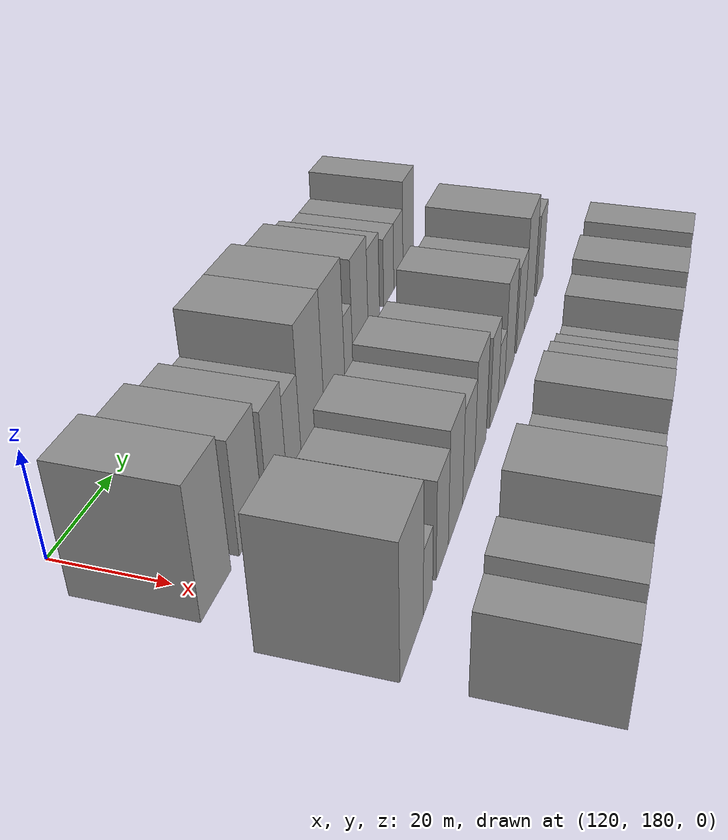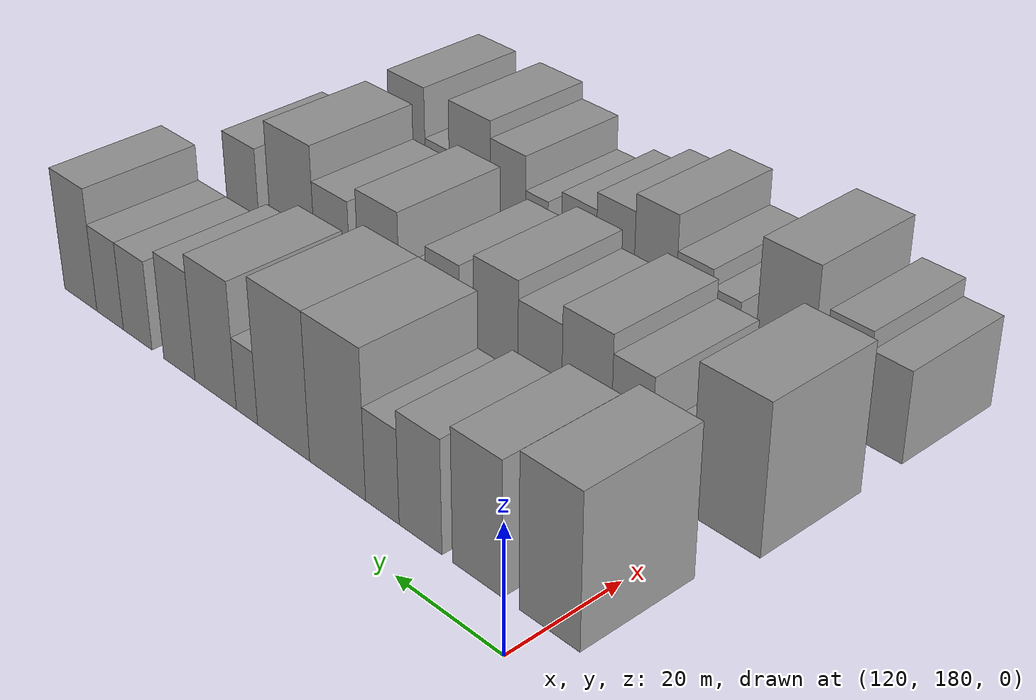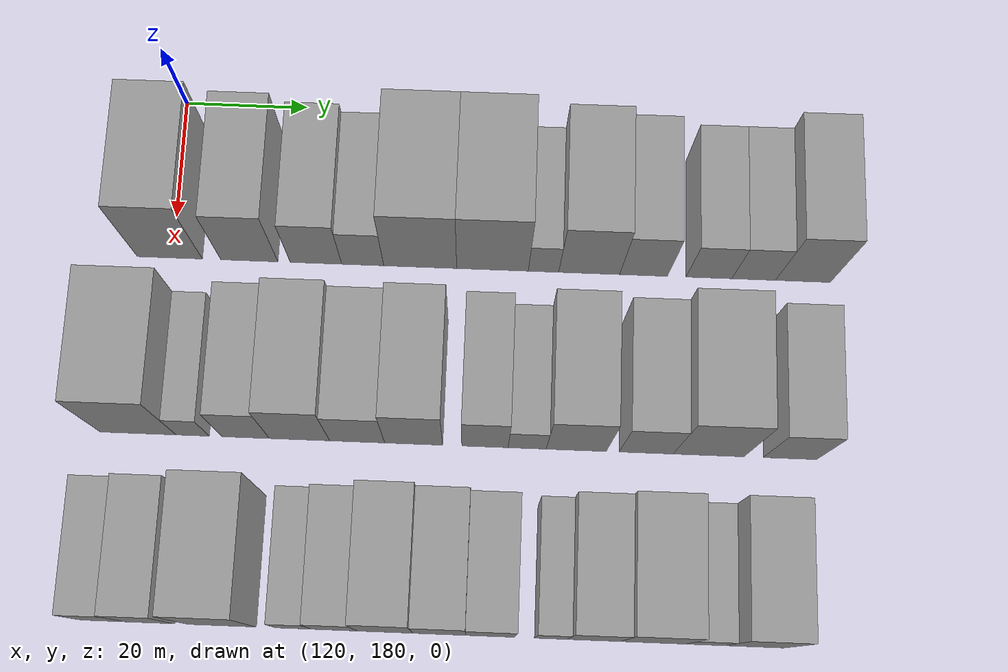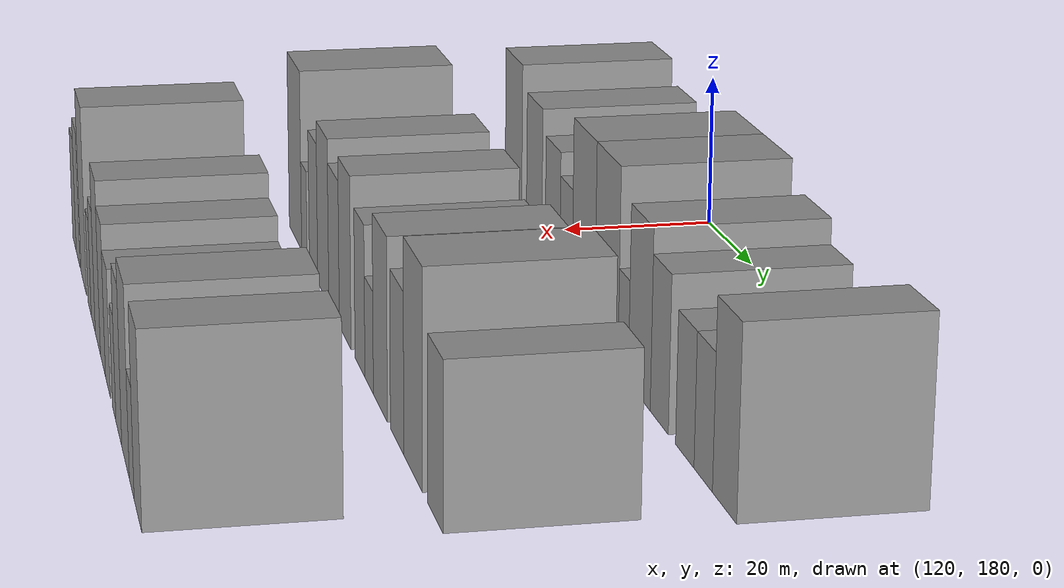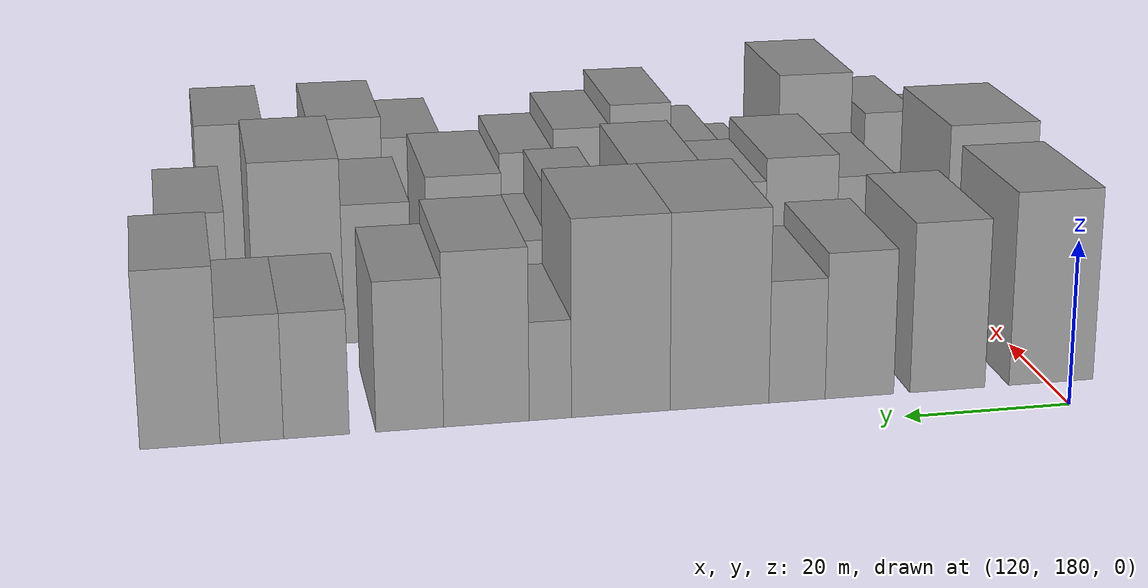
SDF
<sdf version="1.6">
 <world name="default">
  <model name="building_411">
   <static>1</static>
   <pose>137.0000 179.5490 0 0.000000 0.000000 0.000000</pose>
   <link name="link">
    <pose>0 0 12.00 0 0 0</pose>
    <collision name="collision"><geometry><box><size>20.0000 10.5768 24.0000</size></box></geometry></collision>
    <visual name="visual">
     <cast_shadows>0</cast_shadows>
     <geometry><box><size>20.0000 10.5768 24.0000</size></box></geometry>
     <material>
      <script>
       <uri>model://grey_wall/materials/scripts</uri>
       <uri>model://grey_wall/materials/textures</uri>
       <name>vrc/grey_wall</name>
      </script>
     </material>
    </visual>
   </link>
  </model>
  <model name="building_412">
   <static>1</static>
   <pose>137.0000 192.4734 0 0.000000 0.000000 0.000000</pose>
   <link name="link">
    <pose>0 0 10.50 0 0 0</pose>
    <collision name="collision"><geometry><box><size>20.0000 9.2720 21.0000</size></box></geometry></collision>
    <visual name="visual">
     <cast_shadows>0</cast_shadows>
     <geometry><box><size>20.0000 9.2720 21.0000</size></box></geometry>
     <material>
      <script>
       <uri>model://grey_wall/materials/scripts</uri>
       <uri>model://grey_wall/materials/textures</uri>
       <name>vrc/grey_wall</name>
      </script>
     </material>
    </visual>
   </link>
  </model>
  <model name="building_413">
   <static>1</static>
   <pose>137.0000 203.2908 0 0.000000 0.000000 0.000000</pose>
   <link name="link">
    <pose>0 0 9.00 0 0 0</pose>
    <collision name="collision"><geometry><box><size>20.0000 8.3627 18.0000</size></box></geometry></collision>
    <visual name="visual">
     <cast_shadows>0</cast_shadows>
     <geometry><box><size>20.0000 8.3627 18.0000</size></box></geometry>
     <material>
      <script>
       <uri>model://grey_wall/materials/scripts</uri>
       <uri>model://grey_wall/materials/textures</uri>
       <name>vrc/grey_wall</name>
      </script>
     </material>
    </visual>
   </link>
  </model>
  <model name="building_414">
   <static>1</static>
   <pose>137.0000 210.8764 0 0.000000 0.000000 0.000000</pose>
   <link name="link">
    <pose>0 0 7.50 0 0 0</pose>
    <collision name="collision"><geometry><box><size>20.0000 6.8087 15.0000</size></box></geometry></collision>
    <visual name="visual">
     <cast_shadows>0</cast_shadows>
     <geometry><box><size>20.0000 6.8087 15.0000</size></box></geometry>
     <material>
      <script>
       <uri>model://grey_wall/materials/scripts</uri>
       <uri>model://grey_wall/materials/textures</uri>
       <name>vrc/grey_wall</name>
      </script>
     </material>
    </visual>
   </link>
  </model>
  <model name="building_415">
   <static>1</static>
   <pose>137.0000 220.1883 0 0.000000 0.000000 0.000000</pose>
   <link name="link">
    <pose>0 0 12.00 0 0 0</pose>
    <collision name="collision"><geometry><box><size>20.0000 11.8151 24.0000</size></box></geometry></collision>
    <visual name="visual">
     <cast_shadows>0</cast_shadows>
     <geometry><box><size>20.0000 11.8151 24.0000</size></box></geometry>
     <material>
      <script>
       <uri>model://grey_wall/materials/scripts</uri>
       <uri>model://grey_wall/materials/textures</uri>
       <name>vrc/grey_wall</name>
      </script>
     </material>
    </visual>
   </link>
  </model>
  <model name="building_416">
   <static>1</static>
   <pose>137.0000 231.8935 0 0.000000 0.000000 0.000000</pose>
   <link name="link">
    <pose>0 0 12.00 0 0 0</pose>
    <collision name="collision"><geometry><box><size>20.0000 11.5952 24.0000</size></box></geometry></collision>
    <visual name="visual">
     <cast_shadows>0</cast_shadows>
     <geometry><box><size>20.0000 11.5952 24.0000</size></box></geometry>
     <material>
      <script>
       <uri>model://grey_wall/materials/scripts</uri>
       <uri>model://grey_wall/materials/textures</uri>
       <name>vrc/grey_wall</name>
      </script>
     </material>
    </visual>
   </link>
  </model>
  <model name="building_417">
   <static>1</static>
   <pose>137.0000 240.1460 0 0.000000 0.000000 0.000000</pose>
   <link name="link">
    <pose>0 0 6.00 0 0 0</pose>
    <collision name="collision"><geometry><box><size>20.0000 4.9098 12.0000</size></box></geometry></collision>
    <visual name="visual">
     <cast_shadows>0</cast_shadows>
     <geometry><box><size>20.0000 4.9098 12.0000</size></box></geometry>
     <material>
      <script>
       <uri>model://grey_wall/materials/scripts</uri>
       <uri>model://grey_wall/materials/textures</uri>
       <name>vrc/grey_wall</name>
      </script>
     </material>
    </visual>
   </link>
  </model>
  <model name="building_418">
   <static>1</static>
   <pose>137.0000 247.5347 0 0.000000 0.000000 0.000000</pose>
   <link name="link">
    <pose>0 0 10.50 0 0 0</pose>
    <collision name="collision"><geometry><box><size>20.0000 9.8676 21.0000</size></box></geometry></collision>
    <visual name="visual">
     <cast_shadows>0</cast_shadows>
     <geometry><box><size>20.0000 9.8676 21.0000</size></box></geometry>
     <material>
      <script>
       <uri>model://grey_wall/materials/scripts</uri>
       <uri>model://grey_wall/materials/textures</uri>
       <name>vrc/grey_wall</name>
      </script>
     </material>
    </visual>
   </link>
  </model>
  <model name="building_419">
   <static>1</static>
   <pose>137.0000 256.3323 0 0.000000 0.000000 0.000000</pose>
   <link name="link">
    <pose>0 0 9.00 0 0 0</pose>
    <collision name="collision"><geometry><box><size>20.0000 7.7275 18.0000</size></box></geometry></collision>
    <visual name="visual">
     <cast_shadows>0</cast_shadows>
     <geometry><box><size>20.0000 7.7275 18.0000</size></box></geometry>
     <material>
      <script>
       <uri>model://grey_wall/materials/scripts</uri>
       <uri>model://grey_wall/materials/textures</uri>
       <name>vrc/grey_wall</name>
      </script>
     </material>
    </visual>
   </link>
  </model>
  <model name="building_420">
   <static>1</static>
   <pose>137.0000 266.8930 0 0.000000 0.000000 0.000000</pose>
   <link name="link">
    <pose>0 0 7.50 0 0 0</pose>
    <collision name="collision"><geometry><box><size>20.0000 7.3940 15.0000</size></box></geometry></collision>
    <visual name="visual">
     <cast_shadows>0</cast_shadows>
     <geometry><box><size>20.0000 7.3940 15.0000</size></box></geometry>
     <material>
      <script>
       <uri>model://grey_wall/materials/scripts</uri>
       <uri>model://grey_wall/materials/textures</uri>
       <name>vrc/grey_wall</name>
      </script>
     </material>
    </visual>
   </link>
  </model>
  <model name="building_421">
   <static>1</static>
   <pose>137.0000 274.1233 0 0.000000 0.000000 0.000000</pose>
   <link name="link">
    <pose>0 0 7.50 0 0 0</pose>
    <collision name="collision"><geometry><box><size>20.0000 7.0666 15.0000</size></box></geometry></collision>
    <visual name="visual">
     <cast_shadows>0</cast_shadows>
     <geometry><box><size>20.0000 7.0666 15.0000</size></box></geometry>
     <material>
      <script>
       <uri>model://grey_wall/materials/scripts</uri>
       <uri>model://grey_wall/materials/textures</uri>
       <name>vrc/grey_wall</name>
      </script>
     </material>
    </visual>
   </link>
  </model>
  <model name="building_422">
   <static>1</static>
   <pose>137.0000 282.0815 0 0.000000 0.000000 0.000000</pose>
   <link name="link">
    <pose>0 0 10.50 0 0 0</pose>
    <collision name="collision"><geometry><box><size>20.0000 8.8498 21.0000</size></box></geometry></collision>
    <visual name="visual">
     <cast_shadows>0</cast_shadows>
     <geometry><box><size>20.0000 8.8498 21.0000</size></box></geometry>
     <material>
      <script>
       <uri>model://grey_wall/materials/scripts</uri>
       <uri>model://grey_wall/materials/textures</uri>
       <name>vrc/grey_wall</name>
      </script>
     </material>
    </visual>
   </link>
  </model>
  <model name="building_525">
   <static>1</static>
   <pose>166.0000 177.2479 0 0.000000 0.000000 0.000000</pose>
   <link name="link">
    <pose>0 0 12.00 0 0 0</pose>
    <collision name="collision"><geometry><box><size>20.0000 11.9535 24.0000</size></box></geometry></collision>
    <visual name="visual">
     <cast_shadows>0</cast_shadows>
     <geometry><box><size>20.0000 11.9535 24.0000</size></box></geometry>
     <material>
      <script>
       <uri>model://grey_wall/materials/scripts</uri>
       <uri>model://grey_wall/materials/textures</uri>
       <name>vrc/grey_wall</name>
      </script>
     </material>
    </visual>
   </link>
  </model>
  <model name="building_526">
   <static>1</static>
   <pose>166.0000 185.8276 0 0.000000 0.000000 0.000000</pose>
   <link name="link">
    <pose>0 0 6.00 0 0 0</pose>
    <collision name="collision"><geometry><box><size>20.0000 5.2059 12.0000</size></box></geometry></collision>
    <visual name="visual">
     <cast_shadows>0</cast_shadows>
     <geometry><box><size>20.0000 5.2059 12.0000</size></box></geometry>
     <material>
      <script>
       <uri>model://grey_wall/materials/scripts</uri>
       <uri>model://grey_wall/materials/textures</uri>
       <name>vrc/grey_wall</name>
      </script>
     </material>
    </visual>
   </link>
  </model>
  <model name="building_527">
   <static>1</static>
   <pose>166.0000 194.1802 0 0.000000 0.000000 0.000000</pose>
   <link name="link">
    <pose>0 0 9.00 0 0 0</pose>
    <collision name="collision"><geometry><box><size>20.0000 7.4992 18.0000</size></box></geometry></collision>
    <visual name="visual">
     <cast_shadows>0</cast_shadows>
     <geometry><box><size>20.0000 7.4992 18.0000</size></box></geometry>
     <material>
      <script>
       <uri>model://grey_wall/materials/scripts</uri>
       <uri>model://grey_wall/materials/textures</uri>
       <name>vrc/grey_wall</name>
      </script>
     </material>
    </visual>
   </link>
  </model>
  <model name="building_528">
   <static>1</static>
   <pose>166.0000 202.6551 0 0.000000 0.000000 0.000000</pose>
   <link name="link">
    <pose>0 0 10.50 0 0 0</pose>
    <collision name="collision"><geometry><box><size>20.0000 9.4507 21.0000</size></box></geometry></collision>
    <visual name="visual">
     <cast_shadows>0</cast_shadows>
     <geometry><box><size>20.0000 9.4507 21.0000</size></box></geometry>
     <material>
      <script>
       <uri>model://grey_wall/materials/scripts</uri>
       <uri>model://grey_wall/materials/textures</uri>
       <name>vrc/grey_wall</name>
      </script>
     </material>
    </visual>
   </link>
  </model>
  <model name="building_529">
   <static>1</static>
   <pose>166.0000 211.6954 0 0.000000 0.000000 0.000000</pose>
   <link name="link">
    <pose>0 0 9.00 0 0 0</pose>
    <collision name="collision"><geometry><box><size>20.0000 8.6298 18.0000</size></box></geometry></collision>
    <visual name="visual">
     <cast_shadows>0</cast_shadows>
     <geometry><box><size>20.0000 8.6298 18.0000</size></box></geometry>
     <material>
      <script>
       <uri>model://grey_wall/materials/scripts</uri>
       <uri>model://grey_wall/materials/textures</uri>
       <name>vrc/grey_wall</name>
      </script>
     </material>
    </visual>
   </link>
  </model>
  <model name="building_530">
   <static>1</static>
   <pose>166.0000 220.5561 0 0.000000 0.000000 0.000000</pose>
   <link name="link">
    <pose>0 0 10.50 0 0 0</pose>
    <collision name="collision"><geometry><box><size>20.0000 9.0916 21.0000</size></box></geometry></collision>
    <visual name="visual">
     <cast_shadows>0</cast_shadows>
     <geometry><box><size>20.0000 9.0916 21.0000</size></box></geometry>
     <material>
      <script>
       <uri>model://grey_wall/materials/scripts</uri>
       <uri>model://grey_wall/materials/textures</uri>
       <name>vrc/grey_wall</name>
      </script>
     </material>
    </visual>
   </link>
  </model>
  <model name="building_531">
   <static>1</static>
   <pose>166.0000 231.7239 0 0.000000 0.000000 0.000000</pose>
   <link name="link">
    <pose>0 0 9.00 0 0 0</pose>
    <collision name="collision"><geometry><box><size>20.0000 7.2439 18.0000</size></box></geometry></collision>
    <visual name="visual">
     <cast_shadows>0</cast_shadows>
     <geometry><box><size>20.0000 7.2439 18.0000</size></box></geometry>
     <material>
      <script>
       <uri>model://grey_wall/materials/scripts</uri>
       <uri>model://grey_wall/materials/textures</uri>
       <name>vrc/grey_wall</name>
      </script>
     </material>
    </visual>
   </link>
  </model>
  <model name="building_532">
   <static>1</static>
   <pose>166.0000 238.3146 0 0.000000 0.000000 0.000000</pose>
   <link name="link">
    <pose>0 0 6.00 0 0 0</pose>
    <collision name="collision"><geometry><box><size>20.0000 5.9373 12.0000</size></box></geometry></collision>
    <visual name="visual">
     <cast_shadows>0</cast_shadows>
     <geometry><box><size>20.0000 5.9373 12.0000</size></box></geometry>
     <material>
      <script>
       <uri>model://grey_wall/materials/scripts</uri>
       <uri>model://grey_wall/materials/textures</uri>
       <name>vrc/grey_wall</name>
      </script>
     </material>
    </visual>
   </link>
  </model>
  <model name="building_533">
   <static>1</static>
   <pose>166.0000 246.0061 0 0.000000 0.000000 0.000000</pose>
   <link name="link">
    <pose>0 0 10.50 0 0 0</pose>
    <collision name="collision"><geometry><box><size>20.0000 9.4457 21.0000</size></box></geometry></collision>
    <visual name="visual">
     <cast_shadows>0</cast_shadows>
     <geometry><box><size>20.0000 9.4457 21.0000</size></box></geometry>
     <material>
      <script>
       <uri>model://grey_wall/materials/scripts</uri>
       <uri>model://grey_wall/materials/textures</uri>
       <name>vrc/grey_wall</name>
      </script>
     </material>
    </visual>
   </link>
  </model>
  <model name="building_534">
   <static>1</static>
   <pose>166.0000 256.9655 0 0.000000 0.000000 0.000000</pose>
   <link name="link">
    <pose>0 0 9.00 0 0 0</pose>
    <collision name="collision"><geometry><box><size>20.0000 8.4731 18.0000</size></box></geometry></collision>
    <visual name="visual">
     <cast_shadows>0</cast_shadows>
     <geometry><box><size>20.0000 8.4731 18.0000</size></box></geometry>
     <material>
      <script>
       <uri>model://grey_wall/materials/scripts</uri>
       <uri>model://grey_wall/materials/textures</uri>
       <name>vrc/grey_wall</name>
      </script>
     </material>
    </visual>
   </link>
  </model>
  <model name="building_535">
   <static>1</static>
   <pose>166.0000 266.7513 0 0.000000 0.000000 0.000000</pose>
   <link name="link">
    <pose>0 0 12.00 0 0 0</pose>
    <collision name="collision"><geometry><box><size>20.0000 11.0986 24.0000</size></box></geometry></collision>
    <visual name="visual">
     <cast_shadows>0</cast_shadows>
     <geometry><box><size>20.0000 11.0986 24.0000</size></box></geometry>
     <material>
      <script>
       <uri>model://grey_wall/materials/scripts</uri>
       <uri>model://grey_wall/materials/textures</uri>
       <name>vrc/grey_wall</name>
      </script>
     </material>
    </visual>
   </link>
  </model>
  <model name="building_536">
   <static>1</static>
   <pose>166.0000 279.4743 0 0.000000 0.000000 0.000000</pose>
   <link name="link">
    <pose>0 0 9.00 0 0 0</pose>
    <collision name="collision"><geometry><box><size>20.0000 8.3474 18.0000</size></box></geometry></collision>
    <visual name="visual">
     <cast_shadows>0</cast_shadows>
     <geometry><box><size>20.0000 8.3474 18.0000</size></box></geometry>
     <material>
      <script>
       <uri>model://grey_wall/materials/scripts</uri>
       <uri>model://grey_wall/materials/textures</uri>
       <name>vrc/grey_wall</name>
      </script>
     </material>
    </visual>
   </link>
  </model>
  <model name="building_635">
   <static>1</static>
   <pose>195.0000 174.8188 0 0.000000 0.000000 0.000000</pose>
   <link name="link">
    <pose>0 0 7.50 0 0 0</pose>
    <collision name="collision"><geometry><box><size>20.0000 6.7848 15.0000</size></box></geometry></collision>
    <visual name="visual">
     <cast_shadows>0</cast_shadows>
     <geometry><box><size>20.0000 6.7848 15.0000</size></box></geometry>
     <material>
      <script>
       <uri>model://grey_wall/materials/scripts</uri>
       <uri>model://grey_wall/materials/textures</uri>
       <name>vrc/grey_wall</name>
      </script>
     </material>
    </visual>
   </link>
  </model>
  <model name="building_636">
   <static>1</static>
   <pose>195.0000 181.9470 0 0.000000 0.000000 0.000000</pose>
   <link name="link">
    <pose>0 0 9.00 0 0 0</pose>
    <collision name="collision"><geometry><box><size>20.0000 7.4716 18.0000</size></box></geometry></collision>
    <visual name="visual">
     <cast_shadows>0</cast_shadows>
     <geometry><box><size>20.0000 7.4716 18.0000</size></box></geometry>
     <material>
      <script>
       <uri>model://grey_wall/materials/scripts</uri>
       <uri>model://grey_wall/materials/textures</uri>
       <name>vrc/grey_wall</name>
      </script>
     </material>
    </visual>
   </link>
  </model>
  <model name="building_637">
   <static>1</static>
   <pose>195.0000 192.8756 0 0.000000 0.000000 0.000000</pose>
   <link name="link">
    <pose>0 0 12.00 0 0 0</pose>
    <collision name="collision"><geometry><box><size>20.0000 10.3858 24.0000</size></box></geometry></collision>
    <visual name="visual">
     <cast_shadows>0</cast_shadows>
     <geometry><box><size>20.0000 10.3858 24.0000</size></box></geometry>
     <material>
      <script>
       <uri>model://grey_wall/materials/scripts</uri>
       <uri>model://grey_wall/materials/textures</uri>
       <name>vrc/grey_wall</name>
      </script>
     </material>
    </visual>
   </link>
  </model>
  <model name="building_638">
   <static>1</static>
   <pose>195.0000 203.7818 0 0.000000 0.000000 0.000000</pose>
   <link name="link">
    <pose>0 0 6.00 0 0 0</pose>
    <collision name="collision"><geometry><box><size>20.0000 5.4267 12.0000</size></box></geometry></collision>
    <visual name="visual">
     <cast_shadows>0</cast_shadows>
     <geometry><box><size>20.0000 5.4267 12.0000</size></box></geometry>
     <material>
      <script>
       <uri>model://grey_wall/materials/scripts</uri>
       <uri>model://grey_wall/materials/textures</uri>
       <name>vrc/grey_wall</name>
      </script>
     </material>
    </visual>
   </link>
  </model>
  <model name="building_639">
   <static>1</static>
   <pose>195.0000 209.9673 0 0.000000 0.000000 0.000000</pose>
   <link name="link">
    <pose>0 0 7.50 0 0 0</pose>
    <collision name="collision"><geometry><box><size>20.0000 6.9442 15.0000</size></box></geometry></collision>
    <visual name="visual">
     <cast_shadows>0</cast_shadows>
     <geometry><box><size>20.0000 6.9442 15.0000</size></box></geometry>
     <material>
      <script>
       <uri>model://grey_wall/materials/scripts</uri>
       <uri>model://grey_wall/materials/textures</uri>
       <name>vrc/grey_wall</name>
      </script>
     </material>
    </visual>
   </link>
  </model>
  <model name="building_640">
   <static>1</static>
   <pose>195.0000 217.6812 0 0.000000 0.000000 0.000000</pose>
   <link name="link">
    <pose>0 0 10.50 0 0 0</pose>
    <collision name="collision"><geometry><box><size>20.0000 8.4836 21.0000</size></box></geometry></collision>
    <visual name="visual">
     <cast_shadows>0</cast_shadows>
     <geometry><box><size>20.0000 8.4836 21.0000</size></box></geometry>
     <material>
      <script>
       <uri>model://grey_wall/materials/scripts</uri>
       <uri>model://grey_wall/materials/textures</uri>
       <name>vrc/grey_wall</name>
      </script>
     </material>
    </visual>
   </link>
  </model>
  <model name="building_641">
   <static>1</static>
   <pose>195.0000 225.8750 0 0.000000 0.000000 0.000000</pose>
   <link name="link">
    <pose>0 0 9.00 0 0 0</pose>
    <collision name="collision"><geometry><box><size>20.0000 7.9040 18.0000</size></box></geometry></collision>
    <visual name="visual">
     <cast_shadows>0</cast_shadows>
     <geometry><box><size>20.0000 7.9040 18.0000</size></box></geometry>
     <material>
      <script>
       <uri>model://grey_wall/materials/scripts</uri>
       <uri>model://grey_wall/materials/textures</uri>
       <name>vrc/grey_wall</name>
      </script>
     </material>
    </visual>
   </link>
  </model>
  <model name="building_642">
   <static>1</static>
   <pose>195.0000 233.5527 0 0.000000 0.000000 0.000000</pose>
   <link name="link">
    <pose>0 0 7.50 0 0 0</pose>
    <collision name="collision"><geometry><box><size>20.0000 7.4515 15.0000</size></box></geometry></collision>
    <visual name="visual">
     <cast_shadows>0</cast_shadows>
     <geometry><box><size>20.0000 7.4515 15.0000</size></box></geometry>
     <material>
      <script>
       <uri>model://grey_wall/materials/scripts</uri>
       <uri>model://grey_wall/materials/textures</uri>
       <name>vrc/grey_wall</name>
      </script>
     </material>
    </visual>
   </link>
  </model>
  <model name="building_643">
   <static>1</static>
   <pose>195.0000 242.7496 0 0.000000 0.000000 0.000000</pose>
   <link name="link">
    <pose>0 0 6.00 0 0 0</pose>
    <collision name="collision"><geometry><box><size>20.0000 4.9422 12.0000</size></box></geometry></collision>
    <visual name="visual">
     <cast_shadows>0</cast_shadows>
     <geometry><box><size>20.0000 4.9422 12.0000</size></box></geometry>
     <material>
      <script>
       <uri>model://grey_wall/materials/scripts</uri>
       <uri>model://grey_wall/materials/textures</uri>
       <name>vrc/grey_wall</name>
      </script>
     </material>
    </visual>
   </link>
  </model>
  <model name="building_644">
   <static>1</static>
   <pose>195.0000 249.2448 0 0.000000 0.000000 0.000000</pose>
   <link name="link">
    <pose>0 0 9.00 0 0 0</pose>
    <collision name="collision"><geometry><box><size>20.0000 8.0481 18.0000</size></box></geometry></collision>
    <visual name="visual">
     <cast_shadows>0</cast_shadows>
     <geometry><box><size>20.0000 8.0481 18.0000</size></box></geometry>
     <material>
      <script>
       <uri>model://grey_wall/materials/scripts</uri>
       <uri>model://grey_wall/materials/textures</uri>
       <name>vrc/grey_wall</name>
      </script>
     </material>
    </visual>
   </link>
  </model>
  <model name="building_645">
   <static>1</static>
   <pose>195.0000 258.1835 0 0.000000 0.000000 0.000000</pose>
   <link name="link">
    <pose>0 0 10.50 0 0 0</pose>
    <collision name="collision"><geometry><box><size>20.0000 9.8293 21.0000</size></box></geometry></collision>
    <visual name="visual">
     <cast_shadows>0</cast_shadows>
     <geometry><box><size>20.0000 9.8293 21.0000</size></box></geometry>
     <material>
      <script>
       <uri>model://grey_wall/materials/scripts</uri>
       <uri>model://grey_wall/materials/textures</uri>
       <name>vrc/grey_wall</name>
      </script>
     </material>
    </visual>
   </link>
  </model>
  <model name="building_646">
   <static>1</static>
   <pose>195.0000 266.0311 0 0.000000 0.000000 0.000000</pose>
   <link name="link">
    <pose>0 0 6.00 0 0 0</pose>
    <collision name="collision"><geometry><box><size>20.0000 5.8660 12.0000</size></box></geometry></collision>
    <visual name="visual">
     <cast_shadows>0</cast_shadows>
     <geometry><box><size>20.0000 5.8660 12.0000</size></box></geometry>
     <material>
      <script>
       <uri>model://grey_wall/materials/scripts</uri>
       <uri>model://grey_wall/materials/textures</uri>
       <name>vrc/grey_wall</name>
      </script>
     </material>
    </visual>
   </link>
  </model>
  <model name="building_647">
   <static>1</static>
   <pose>195.0000 273.4799 0 0.000000 0.000000 0.000000</pose>
   <link name="link">
    <pose>0 0 10.50 0 0 0</pose>
    <collision name="collision"><geometry><box><size>20.0000 9.0315 21.0000</size></box></geometry></collision>
    <visual name="visual">
     <cast_shadows>0</cast_shadows>
     <geometry><box><size>20.0000 9.0315 21.0000</size></box></geometry>
     <material>
      <script>
       <uri>model://grey_wall/materials/scripts</uri>
       <uri>model://grey_wall/materials/textures</uri>
       <name>vrc/grey_wall</name>
      </script>
     </material>
    </visual>
   </link>
  </model>
 </world>
</sdf>
